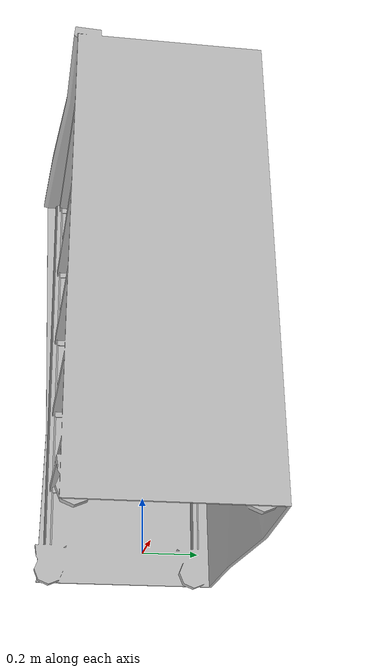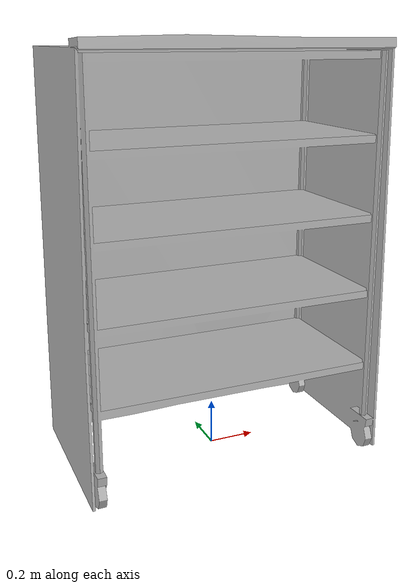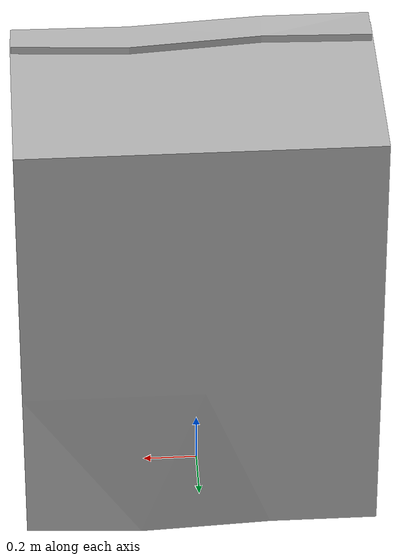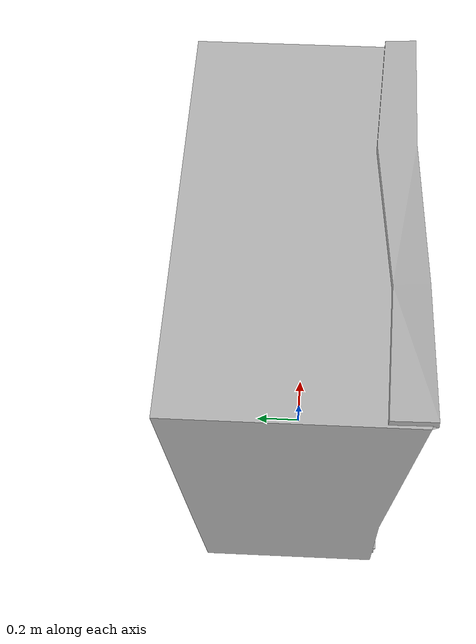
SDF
<?xml version="1.0" ?>
<sdf version="1.5">
  <model name="StorageRackCoverOpen">
    <link name="link">
      <pose>0 0 0 0 0 0</pose>

        <visual name="visual">
          <geometry>
            <mesh><uri>model://StorageRackCoverOpen/meshes/StorageRackCoverOpen.obj</uri></mesh>
          </geometry>
        </visual>

        <collision name="collision">
          <geometry>
            <mesh><uri>model://StorageRackCoverOpen/meshes/StorageRackCoverOpen.obj</uri></mesh>
          </geometry>
        </collision>

    </link>
  </model>
</sdf>
